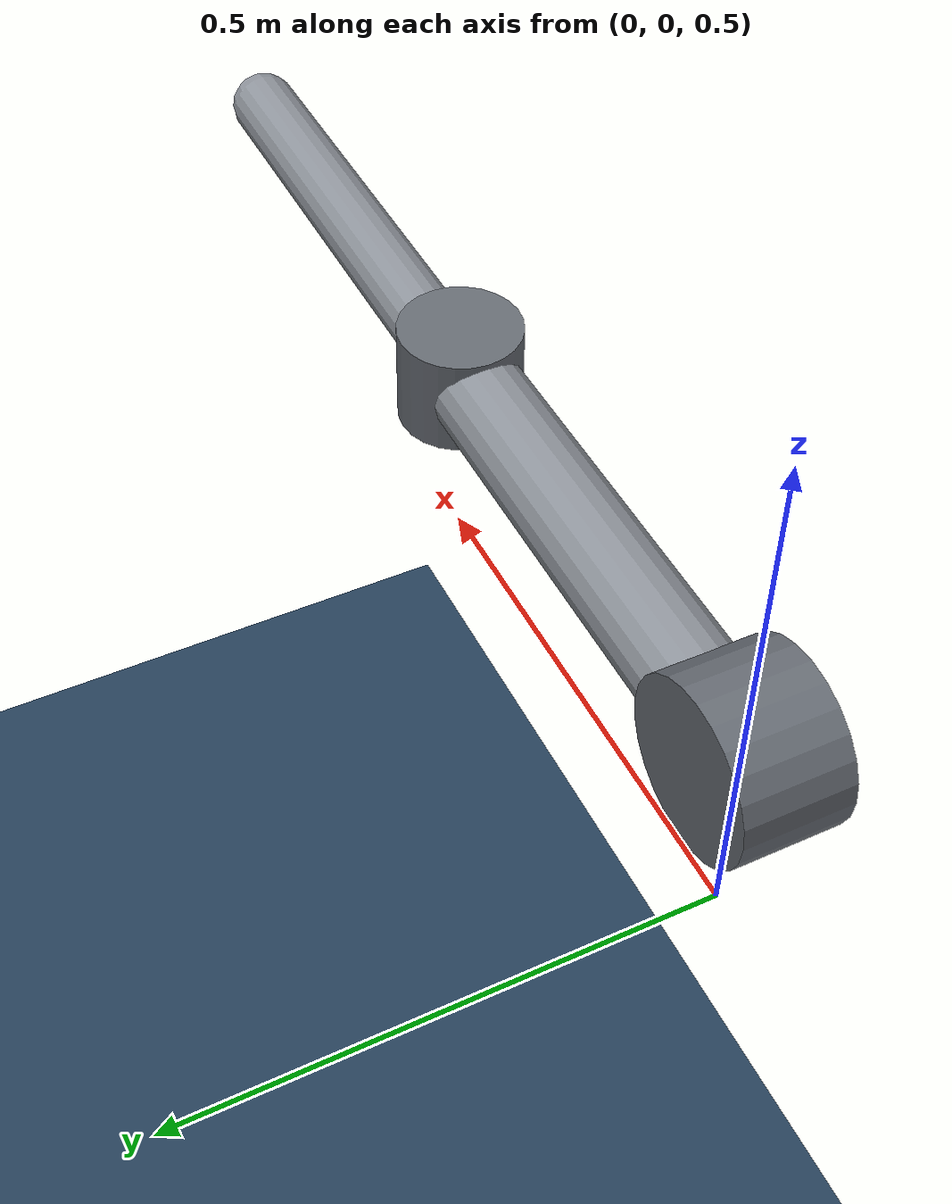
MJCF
<?xml version="1.0" encoding="utf-8"?>

<mujoco model="2_joints_arm">
  <compiler eulerseq="XYZ" fitaabb="true" angle="radian"  autolimits="true"/>
  <option timestep="0.001" gravity="0 0 -9.81"/>
  <asset>
    <texture name="skybox" type="skybox" builtin="gradient" rgb1="0.2 0.3 0.4" rgb2="0 0 0" width="1000" height="1000" mark="random" random="0.001" markrgb="1 1 1"/>
    <texture type="2d" name="groundplane" builtin="checker" mark="edge" rgb1="0.2 0.3 0.4" rgb2="0.1 0.2 0.3" markrgb="0.8 0.8 0.8" width="1000" height="1000"/>
    <material name="groundplane" texture="groundplane" texuniform="true" texrepeat="5 5" reflectance="0.2"/>
  </asset>

  <worldbody>
    <geom name="floor" pos="0 0 -0.5" size="0 0 1" type="plane" material="groundplane"/>
    <light directional="true" diffuse=".8 .8 .8" specular=".2 .2 .2" pos="0 0 5" dir="0 0 -1"/>
    <body pos="0 0 0.7">
      <geom name="upper arm" type="capsule" size="0.045" fromto="0 0 0  0.5 0 0" rgba="0.55 0.57 0.6 1"/>
      <joint name="shoulder" type="hinge" damping="0.1"  axis="0 1 0"/>
      <geom name="shoulder" type="cylinder" pos="0 0 0" size=".08 .05" rgba="0.4 0.42 0.45 1" mass="0" euler="1.5708 0 0" />
      <body pos="0.5 0 0">
        <geom name="forearm" type="capsule" size="0.035" fromto="0 0 0  0.5 0 0" rgba="0.55 0.57 0.6 1"/>
        <joint name="elbow" type="hinge" damping="0.1"  axis="0 0 1"/>
        <geom name="elbow" type="cylinder" pos="0 0 0" size=".06 .05" rgba="0.4 0.42 0.45 1" mass="0" />
      </body>
    </body>
  </worldbody>
  <actuator>
    <position name="shoulder_actuator" joint="shoulder" ctrlrange="-1.5708 1.5708" kp="1000" kv="50"/>
    <position name="elbow_actuator" joint="elbow" ctrlrange="-2.618 0" kp="1000" kv="50"/>
  </actuator>
  <sensor>
    <jointpos name="jointpos_shoulder" joint="shoulder" noise="0.01"/>
    <jointvel name="jointvel_shoulder" joint="shoulder" noise="0.01"/>
    <jointactuatorfrc name="jointactuatorfrc_shoulder" joint="shoulder" noise="0.01"/>

    <jointpos name="jointpos_elbow" joint="elbow" noise="0.05"/>
    <jointactuatorfrc name="jointactuatorfrc_elbow" joint="elbow" noise="0.05"/>
    <jointvel name="jointvel_elbow" joint="elbow" noise="0.05"/>
  </sensor>
</mujoco>
